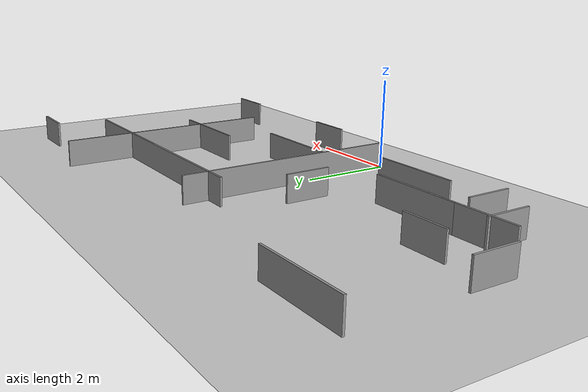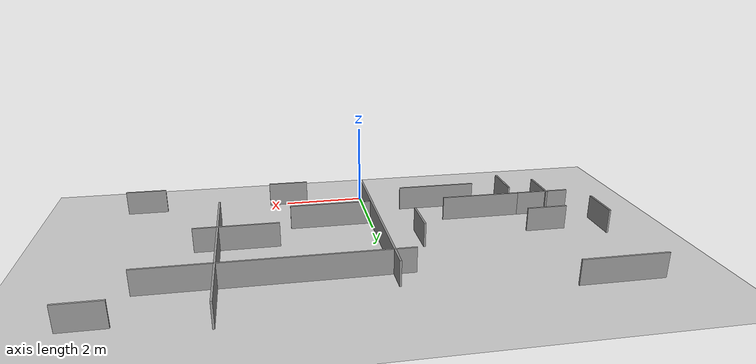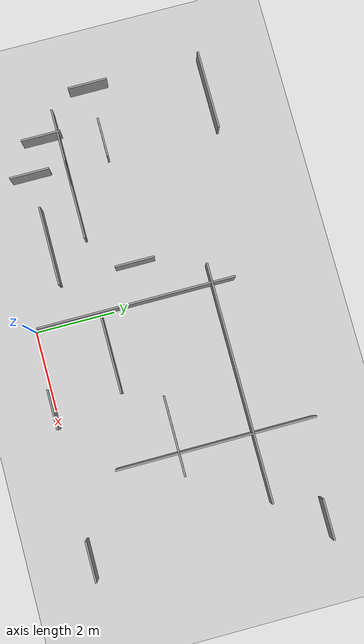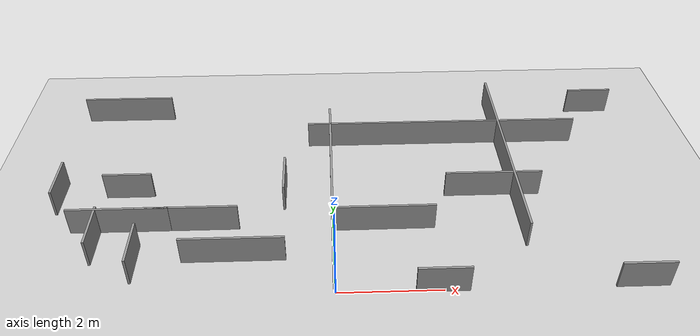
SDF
<sdf version="1.7">
 <world name="default">
  <model name="ground_plane">
   <static>1</static>
   <link name="link">
    <collision name="collision">
     <geometry><plane><normal>0 0 1</normal><size>100 100</size></plane></geometry>
     <surface><friction><ode><mu>100</mu><mu2>50</mu2></ode></friction></surface>
    </collision>
    <visual name="visual">
     <cast_shadows>0</cast_shadows>
     <geometry><plane><normal>0 0 1</normal><size>100 100</size></plane></geometry>
     <material>
      <script><uri>file://media/materials/scripts/gazebo.material</uri><name>Gazebo/Grey</name></script>
     </material>
    </visual>
   </link>
  </model>
  <light name="sun" type="directional">
   <pose>0 0 10 0 -0 0</pose>
   <diffuse>0.8 0.8 0.8 1</diffuse>
   <specular>0.2 0.2 0.2 1</specular>
   <attenuation>
    <range>1000</range>
    <constant>0.9</constant>
    <linear>0.01</linear>
    <quadratic>0.001</quadratic>
   </attenuation>
   <direction>-0.5 0.1 -0.9</direction>
   <spot><inner_angle>0</inner_angle><outer_angle>0</outer_angle><falloff>0</falloff></spot>
  </light>
  <scene><shadows>0</shadows><ambient>0.4 0.4 0.4 1</ambient><background>0.7 0.7 0.7 1</background></scene>
  <physics type="ode">
   <real_time_update_rate>1000</real_time_update_rate>
   <max_step_size>0.001</max_step_size>
   <real_time_factor>1</real_time_factor>
   <ode>
    <solver>
     <type>quick</type>
     <iters>150</iters>
     <precon_iters>0</precon_iters>
     <sor>1.4</sor>
     <use_dynamic_moi_rescaling>1</use_dynamic_moi_rescaling>
    </solver>
    <constraints>
     <cfm>1e-05</cfm>
     <erp>0.2</erp>
     <contact_max_correcting_vel>2000</contact_max_correcting_vel>
     <contact_surface_layer>0.01</contact_surface_layer>
    </constraints>
   </ode>
  </physics>
  <gravity>0 0 -9.8</gravity>
  <magnetic_field>6e-06 2.3e-05 -4.2e-05</magnetic_field>
  <atmosphere type="adiabatic"/>
  <spherical_coordinates>
   <surface_model>EARTH_WGS84</surface_model>
   <latitude_deg>0</latitude_deg>
   <longitude_deg>0</longitude_deg>
   <elevation>0</elevation>
   <heading_deg>0</heading_deg>
  </spherical_coordinates>
  <model name="maze_built">
   <pose>0.462633 2.81339 0 0 -0 0</pose>
   <link name="Wall_0">
    <collision name="Wall_0_Collision">
     <geometry><box><size>2 0.045 0.6</size></box></geometry>
     <pose>0 0 0.300 0 -0 0</pose>
    </collision>
    <visual name="Wall_0_Visual">
     <pose>0 0 0.300 0 -0 0</pose>
     <geometry><box><size>2 0.045 0.6</size></box></geometry>
     <material>
      <script><uri>file://media/materials/scripts/gazebo.material</uri><name>Gazebo/Grey</name></script>
      <ambient>1 1 1 1</ambient>
     </material>
     <meta><layer>0</layer></meta>
    </visual>
    <pose>0.550122 -1.12784 0 0 -0 -3.13873</pose>
   </link>
   <link name="Wall_1">
    <collision name="Wall_1_Collision">
     <geometry><box><size>5 0.045 0.6</size></box></geometry>
     <pose>0 0 0.300 0 -0 0</pose>
    </collision>
    <visual name="Wall_1_Visual">
     <pose>0 0 0.300 0 -0 0</pose>
     <geometry><box><size>5 0.045 0.6</size></box></geometry>
     <material>
      <script><uri>file://media/materials/scripts/gazebo.material</uri><name>Gazebo/Grey</name></script>
      <ambient>1 1 1 1</ambient>
     </material>
     <meta><layer>0</layer></meta>
    </visual>
    <pose>-0.493757 -0.215773 0 0 -0 1.5708</pose>
   </link>
   <link name="Wall_2">
    <collision name="Wall_2_Collision">
     <geometry><box><size>6 0.045 0.6</size></box></geometry>
     <pose>0 0 0.300 0 -0 0</pose>
    </collision>
    <visual name="Wall_2_Visual">
     <pose>0 0 0.300 0 -0 0</pose>
     <geometry><box><size>6 0.045 0.6</size></box></geometry>
     <material>
      <script><uri>file://media/materials/scripts/gazebo.material</uri><name>Gazebo/Grey</name></script>
      <ambient>1 1 1 1</ambient>
     </material>
     <meta><layer>0</layer></meta>
    </visual>
    <pose>2.01246 1.69872 0 0 -0 0</pose>
   </link>
   <link name="Wall_3">
    <collision name="Wall_3_Collision">
     <geometry><box><size>5 0.045 0.6</size></box></geometry>
     <pose>0 0 0.300 0 -0 0</pose>
    </collision>
    <visual name="Wall_3_Visual">
     <pose>0 0 0.300 0 -0 0</pose>
     <geometry><box><size>5 0.045 0.6</size></box></geometry>
     <material>
      <script><uri>file://media/materials/scripts/gazebo.material</uri><name>Gazebo/Grey</name></script>
      <ambient>1 1 1 1</ambient>
     </material>
     <meta><layer>0</layer></meta>
    </visual>
    <pose>3.28746 0.773721 0 0 -0 -1.5708</pose>
   </link>
   <link name="Wall_4">
    <collision name="Wall_4_Collision">
     <geometry><box><size>2 0.045 0.6</size></box></geometry>
     <pose>0 0 0.300 0 -0 0</pose>
    </collision>
    <visual name="Wall_4_Visual">
     <pose>0 0 0.300 0 -0 0</pose>
     <geometry><box><size>2 0.045 0.6</size></box></geometry>
     <material>
      <script><uri>file://media/materials/scripts/gazebo.material</uri><name>Gazebo/Grey</name></script>
      <ambient>1 1 1 1</ambient>
     </material>
     <meta><layer>0</layer></meta>
    </visual>
    <pose>2.86246 -0.151279 0 0 -0 3.14159</pose>
   </link>
   <link name="Wall_10">
    <collision name="Wall_10_Collision">
     <geometry><box><size>1 0.045 0.6</size></box></geometry>
     <pose>0 0 0.300 0 -0 0</pose>
    </collision>
    <visual name="Wall_10_Visual">
     <pose>0 0 0.300 0 -0 0</pose>
     <geometry><box><size>1 0.045 0.6</size></box></geometry>
     <material>
      <script><uri>file://media/materials/scripts/gazebo.material</uri><name>Gazebo/Grey</name></script>
      <ambient>1 1 1 1</ambient>
     </material>
     <meta><layer>0</layer></meta>
    </visual>
    <pose>-4.275 -1.9544 0 0 -0 1.5708</pose>
   </link>
   <link name="Wall_12">
    <collision name="Wall_12_Collision">
     <geometry><box><size>2 0.045 0.6</size></box></geometry>
     <pose>0 0 0.300 0 -0 0</pose>
    </collision>
    <visual name="Wall_12_Visual">
     <pose>0 0 0.300 0 -0 0</pose>
     <geometry><box><size>2 0.045 0.6</size></box></geometry>
     <material>
      <script><uri>file://media/materials/scripts/gazebo.material</uri><name>Gazebo/Grey</name></script>
      <ambient>1 1 1 1</ambient>
     </material>
     <meta><layer>0</layer></meta>
    </visual>
    <pose>-4.7 -1.0294 0 0 -0 3.14159</pose>
   </link>
   <link name="Wall_13">
    <collision name="Wall_13_Collision">
     <geometry><box><size>2 0.045 0.6</size></box></geometry>
     <pose>0 0 0.300 0 -0 0</pose>
    </collision>
    <visual name="Wall_13_Visual">
     <pose>0 0 0.300 0 -0 0</pose>
     <geometry><box><size>2 0.045 0.6</size></box></geometry>
     <material>
      <script><uri>file://media/materials/scripts/gazebo.material</uri><name>Gazebo/Grey</name></script>
      <ambient>1 1 1 1</ambient>
     </material>
     <meta><layer>0</layer></meta>
    </visual>
    <pose>-3.35 -1.0294 0 0 -0 0</pose>
   </link>
   <link name="Wall_11">
    <collision name="Wall_11_Collision">
     <geometry><box><size>1 0.045 0.6</size></box></geometry>
     <pose>0 0 0.300 0 -0 0</pose>
    </collision>
    <visual name="Wall_11_Visual">
     <pose>0 0 0.300 0 -0 0</pose>
     <geometry><box><size>1 0.045 0.6</size></box></geometry>
     <material>
      <script><uri>file://media/materials/scripts/gazebo.material</uri><name>Gazebo/Grey</name></script>
      <ambient>1 1 1 1</ambient>
     </material>
     <meta><layer>0</layer></meta>
    </visual>
    <pose>-6.125 -0.000145 0 0 -0 1.5708</pose>
   </link>
   <link name="Wall_14">
    <collision name="Wall_14_Collision">
     <geometry><box><size>1 0.045 0.6</size></box></geometry>
     <pose>0 0 0.300 0 -0 0</pose>
    </collision>
    <visual name="Wall_14_Visual">
     <pose>0 0 0.300 0 -0 0</pose>
     <geometry><box><size>1 0.045 0.6</size></box></geometry>
     <material>
      <script><uri>file://media/materials/scripts/gazebo.material</uri><name>Gazebo/Grey</name></script>
      <ambient>1 1 1 1</ambient>
     </material>
     <meta><layer>0</layer></meta>
    </visual>
    <pose>-5.125 -1.4544 0 0 -0 -1.5708</pose>
   </link>
   <link name="Wall_15">
    <collision name="Wall_15_Collision">
     <geometry><box><size>2 0.045 0.6</size></box></geometry>
     <pose>0 0 0.300 0 -0 0</pose>
    </collision>
    <visual name="Wall_15_Visual">
     <pose>0 0 0.300 0 -0 0</pose>
     <geometry><box><size>2 0.045 0.6</size></box></geometry>
     <material>
      <script><uri>file://media/materials/scripts/gazebo.material</uri><name>Gazebo/Grey</name></script>
      <ambient>1 1 1 1</ambient>
     </material>
     <meta><layer>0</layer></meta>
    </visual>
    <pose>-2.39752 -1.92236 0 0 -0 0</pose>
   </link>
   <link name="Wall_17">
    <collision name="Wall_17_Collision">
     <geometry><box><size>1 0.045 0.6</size></box></geometry>
     <pose>0 0 0.300 0 -0 0</pose>
    </collision>
    <visual name="Wall_17_Visual">
     <pose>0 0 0.300 0 -0 0</pose>
     <geometry><box><size>1 0.045 0.6</size></box></geometry>
     <material>
      <script><uri>file://media/materials/scripts/gazebo.material</uri><name>Gazebo/Grey</name></script>
      <ambient>1 1 1 1</ambient>
     </material>
     <meta><layer>0</layer></meta>
    </visual>
    <pose>-1.47253 0.002642 0 0 -0 1.5708</pose>
   </link>
   <link name="Wall_18">
    <collision name="Wall_18_Collision">
     <geometry><box><size>1 0.045 0.6</size></box></geometry>
     <pose>0 0 0.300 0 -0 0</pose>
    </collision>
    <visual name="Wall_18_Visual">
     <pose>0 0 0.300 0 -0 0</pose>
     <geometry><box><size>1 0.045 0.6</size></box></geometry>
     <material>
      <script><uri>file://media/materials/scripts/gazebo.material</uri><name>Gazebo/Grey</name></script>
      <ambient>1 1 1 1</ambient>
     </material>
     <meta><layer>0</layer></meta>
    </visual>
    <pose>-1.47253 0.002642 0 0 -0 1.5708</pose>
   </link>
   <link name="Wall_5">
    <collision name="Wall_5_Collision">
     <geometry><box><size>2 0.045 0.6</size></box></geometry>
     <pose>0 0 0.300 0 -0 0</pose>
    </collision>
    <visual name="Wall_5_Visual">
     <pose>0 0 0.300 0 -0 0</pose>
     <geometry><box><size>2 0.045 0.6</size></box></geometry>
     <material>
      <script><uri>file://media/materials/scripts/gazebo.material</uri><name>Gazebo/Grey</name></script>
      <ambient>1 1 1 1</ambient>
     </material>
     <meta><layer>0</layer></meta>
    </visual>
    <pose>-5.2 2.87911 0 0 -0 0</pose>
   </link>
   <link name="Wall_6">
    <collision name="Wall_6_Collision">
     <geometry><box><size>1 0.045 0.6</size></box></geometry>
     <pose>0 0 0.300 0 -0 0</pose>
    </collision>
    <visual name="Wall_6_Visual">
     <pose>0 0 0.300 0 -0 0</pose>
     <geometry><box><size>1 0.045 0.6</size></box></geometry>
     <material>
      <script><uri>file://media/materials/scripts/gazebo.material</uri><name>Gazebo/Grey</name></script>
      <ambient>1 1 1 1</ambient>
     </material>
     <meta><layer>0</layer></meta>
    </visual>
    <pose>-4.7 0.029114 0 0 -0 3.14159</pose>
   </link>
   <link name="Wall_7">
    <collision name="Wall_7_Collision">
     <geometry><box><size>1 0.045 0.6</size></box></geometry>
     <pose>0 0 0.300 0 -0 0</pose>
    </collision>
    <visual name="Wall_7_Visual">
     <pose>0 0 0.300 0 -0 0</pose>
     <geometry><box><size>1 0.045 0.6</size></box></geometry>
     <material>
      <script><uri>file://media/materials/scripts/gazebo.material</uri><name>Gazebo/Grey</name></script>
      <ambient>1 1 1 1</ambient>
     </material>
     <meta><layer>0</layer></meta>
    </visual>
    <pose>5.7 2.87911 0 0 -0 0</pose>
   </link>
   <link name="Wall_8">
    <collision name="Wall_8_Collision">
     <geometry><box><size>1 0.045 0.6</size></box></geometry>
     <pose>0 0 0.300 0 -0 0</pose>
    </collision>
    <visual name="Wall_8_Visual">
     <pose>0 0 0.300 0 -0 0</pose>
     <geometry><box><size>1 0.045 0.6</size></box></geometry>
     <material>
      <script><uri>file://media/materials/scripts/gazebo.material</uri><name>Gazebo/Grey</name></script>
      <ambient>1 1 1 1</ambient>
     </material>
     <meta><layer>0</layer></meta>
    </visual>
    <pose>5.2 -2.82089 0 0 -0 3.14159</pose>
   </link>
   <link name="Wall_9">
    <collision name="Wall_9_Collision">
     <geometry><box><size>1 0.045 0.6</size></box></geometry>
     <pose>0 0 0.300 0 -0 0</pose>
    </collision>
    <visual name="Wall_9_Visual">
     <pose>0 0 0.300 0 -0 0</pose>
     <geometry><box><size>1 0.045 0.6</size></box></geometry>
     <material>
      <script><uri>file://media/materials/scripts/gazebo.material</uri><name>Gazebo/Grey</name></script>
      <ambient>1 1 1 1</ambient>
     </material>
     <meta><layer>0</layer></meta>
    </visual>
    <pose>1.5 -2.82089 0 0 -0 3.14159</pose>
   </link>
   <static>1</static>
  </model>
 </world>
</sdf>
